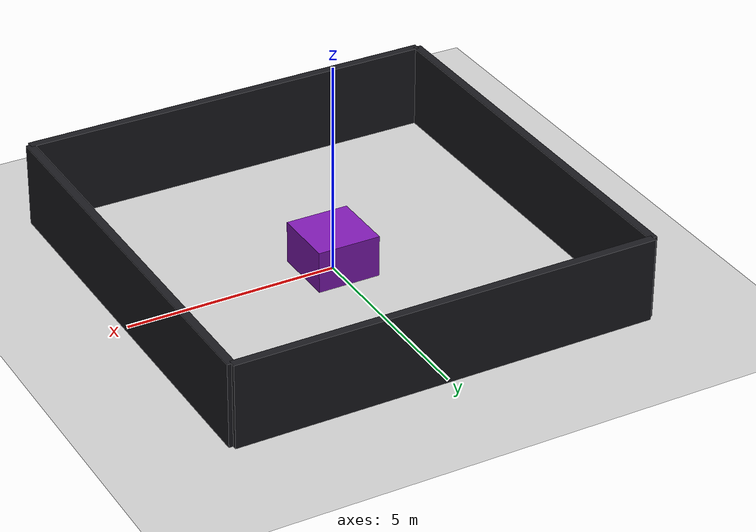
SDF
<?xml version="1.0" ?>
<sdf version="1.6">
  <world name="maze_world">
    <!-- Physics Configuration -->
    <physics type="ode">
      <max_step_size>0.001</max_step_size>
      <real_time_factor>1.0</real_time_factor>
      <real_time_update_rate>1000</real_time_update_rate>
    </physics>

    <!-- Scene Lighting & Background Settings -->
    <scene>
      <ambient>0.25 0.15 0.3 1.0</ambient>
      <background>0.08 0.05 0.12 1.0</background>
      <shadows>true</shadows>
    </scene>

    <!-- Ground Plane -->
    <include>
      <uri>https://fuel.gazebosim.org/1.0/OpenRobotics/models/Ground Plane</uri>
    </include>

    <!-- Sun Light Source -->
    <include>
      <uri>https://fuel.gazebosim.org/1.0/OpenRobotics/models/Sun</uri>
    </include>

    <!-- Outer Wall 1 (North) - Matte Dark Black -->
    <model name="wall_north">
      <static>true</static>
      <pose>0 5 1 0 0 0</pose>
      <link name="link">
        <collision name="collision">
          <geometry><box><size>10 0.2 2</size></box></geometry>
        </collision>
        <visual name="visual">
          <geometry><box><size>10 0.2 2</size></box></geometry>
          <material>
            <ambient>0.05 0.05 0.07 1</ambient>
            <diffuse>0.1 0.1 0.12 1</diffuse>
            <specular>0.05 0.05 0.05 1</specular>
          </material>
        </visual>
      </link>
    </model>

    <!-- Outer Wall 2 (South) - Matte Dark Black -->
    <model name="wall_south">
      <static>true</static>
      <pose>0 -5 1 0 0 0</pose>
      <link name="link">
        <collision name="collision">
          <geometry><box><size>10 0.2 2</size></box></geometry>
        </collision>
        <visual name="visual">
          <geometry><box><size>10 0.2 2</size></box></geometry>
          <material>
            <ambient>0.05 0.05 0.07 1</ambient>
            <diffuse>0.1 0.1 0.12 1</diffuse>
            <specular>0.05 0.05 0.05 1</specular>
          </material>
        </visual>
      </link>
    </model>

    <!-- Outer Wall 3 (East) - Matte Dark Black -->
    <model name="wall_east">
      <static>true</static>
      <pose>5 0 1 0 0 1.5708</pose>
      <link name="link">
        <collision name="collision">
          <geometry><box><size>10 0.2 2</size></box></geometry>
        </collision>
        <visual name="visual">
          <geometry><box><size>10 0.2 2</size></box></geometry>
          <material>
            <ambient>0.05 0.05 0.07 1</ambient>
            <diffuse>0.1 0.1 0.12 1</diffuse>
            <specular>0.05 0.05 0.05 1</specular>
          </material>
        </visual>
      </link>
    </model>

    <!-- Outer Wall 4 (West) - Matte Dark Black -->
    <model name="wall_west">
      <static>true</static>
      <pose>-5 0 1 0 0 1.5708</pose>
      <link name="link">
        <collision name="collision">
          <geometry><box><size>10 0.2 2</size></box></geometry>
        </collision>
        <visual name="visual">
          <geometry><box><size>10 0.2 2</size></box></geometry>
          <material>
            <ambient>0.05 0.05 0.07 1</ambient>
            <diffuse>0.1 0.1 0.12 1</diffuse>
            <specular>0.05 0.05 0.05 1</specular>
          </material>
        </visual>
      </link>
    </model>

    <!-- Center Obstacle Box - Royal Purple Accent -->
    <model name="obstacle_center">
      <static>true</static>
      <pose>0 0 0.5 0 0 0</pose>
      <link name="link">
        <collision name="collision">
          <geometry><box><size>1.5 1.5 1</size></box></geometry>
        </collision>
        <visual name="visual">
          <geometry><box><size>1.5 1.5 1</size></box></geometry>
          <material>
            <ambient>0.3 0.05 0.45 1</ambient>
            <diffuse>0.5 0.1 0.7 1</diffuse>
            <specular>0.3 0.2 0.4 1</specular>
          </material>
        </visual>
      </link>
    </model>

  </world>
</sdf>
